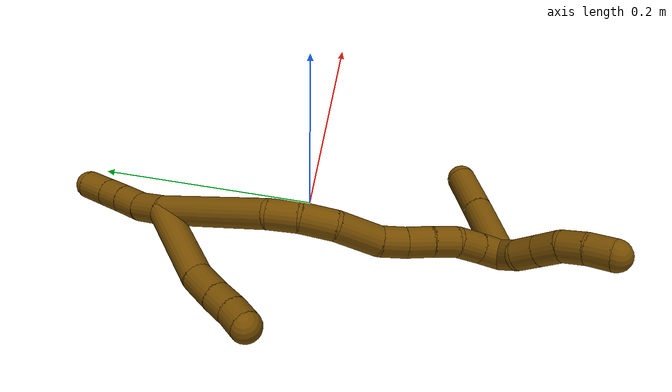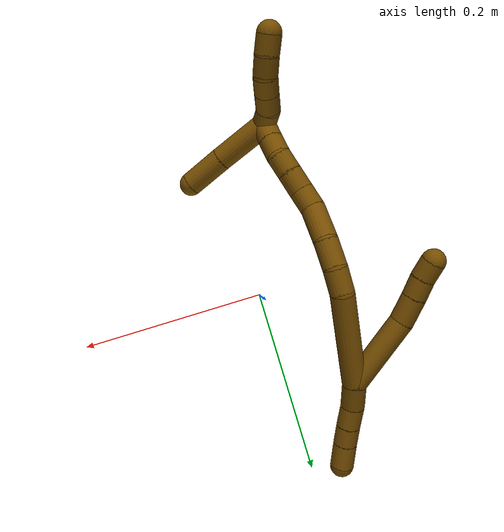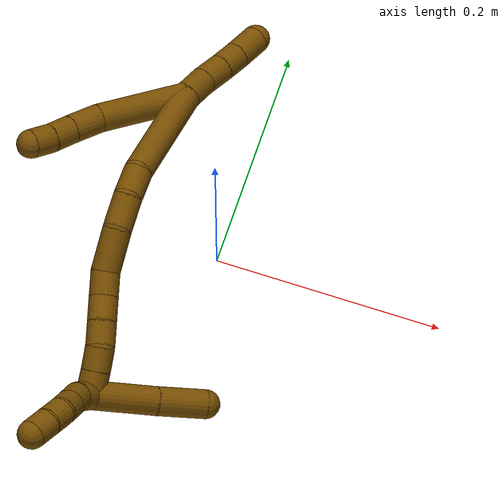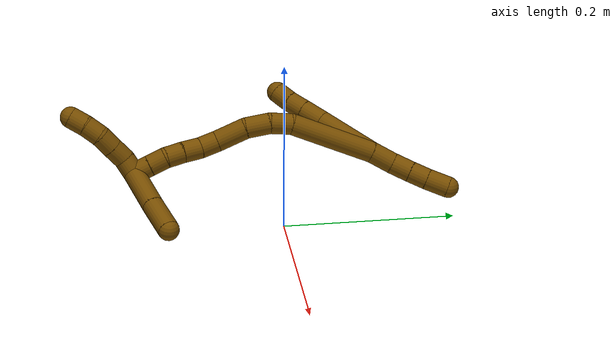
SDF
<sdf version="1.7">
 <world name="default">
  <model name="12">
   <static>0</static>
   <link name="12">
    <collision name="collision-cylinder-e_1_2_8">
     <pose>-0.03387 -0.021312 0.002916 1.4348 -1.00497 -0.894153</pose>
     <geometry><cylinder><radius>0.0125</radius><length>0.080246</length></cylinder></geometry>
     <surface>
      <friction><ode><mu>1.16</mu><mu2>1.16</mu2><slip1>0</slip1><slip2>0</slip2></ode></friction>
      <contact><ode><kp>1e+06</kp><kd>1</kd><max_vel>0</max_vel><min_depth>0.001</min_depth></ode></contact>
     </surface>
    </collision>
    <visual name="visual-cylinder-e_1_2_8">
     <pose>-0.03387 -0.021312 0.002916 1.4348 -1.00497 -0.894153</pose>
     <geometry><cylinder><radius>0.0125</radius><length>0.080246</length></cylinder></geometry>
     <material><ambient>0.466667 0.301961 0 1</ambient></material>
    </visual>
    <collision name="collision-cylinder-e_2_8_9">
     <pose>-0.077878 -0.052409 0.00881 1.27543 -0.781013 -0.59213</pose>
     <geometry><cylinder><radius>0.0125</radius><length>0.028803</length></cylinder></geometry>
     <surface>
      <friction><ode><mu>1.16</mu><mu2>1.16</mu2><slip1>0</slip1><slip2>0</slip2></ode></friction>
      <contact><ode><kp>1e+06</kp><kd>1</kd><max_vel>0</max_vel><min_depth>0.001</min_depth></ode></contact>
     </surface>
    </collision>
    <visual name="visual-cylinder-e_2_8_9">
     <pose>-0.077878 -0.052409 0.00881 1.27543 -0.781013 -0.59213</pose>
     <geometry><cylinder><radius>0.0125</radius><length>0.028803</length></cylinder></geometry>
     <material><ambient>0.466667 0.301961 0 1</ambient></material>
    </visual>
    <collision name="collision-cylinder-e_3_9_10">
     <pose>-0.095008 -0.069539 0.014136 1.26135 -0.736466 -0.549196</pose>
     <geometry><cylinder><radius>0.0125</radius><length>0.020817</length></cylinder></geometry>
     <surface>
      <friction><ode><mu>1.16</mu><mu2>1.16</mu2><slip1>0</slip1><slip2>0</slip2></ode></friction>
      <contact><ode><kp>1e+06</kp><kd>1</kd><max_vel>0</max_vel><min_depth>0.001</min_depth></ode></contact>
     </surface>
    </collision>
    <visual name="visual-cylinder-e_3_9_10">
     <pose>-0.095008 -0.069539 0.014136 1.26135 -0.736466 -0.549196</pose>
     <geometry><cylinder><radius>0.0125</radius><length>0.020817</length></cylinder></geometry>
     <material><ambient>0.466667 0.301961 0 1</ambient></material>
    </visual>
    <collision name="collision-cylinder-e_4_10_6">
     <pose>-0.109399 -0.083108 0.019284 1.14805 -0.825828 -0.552138</pose>
     <geometry><cylinder><radius>0.0125</radius><length>0.020134</length></cylinder></geometry>
     <surface>
      <friction><ode><mu>1.16</mu><mu2>1.16</mu2><slip1>0</slip1><slip2>0</slip2></ode></friction>
      <contact><ode><kp>1e+06</kp><kd>1</kd><max_vel>0</max_vel><min_depth>0.001</min_depth></ode></contact>
     </surface>
    </collision>
    <visual name="visual-cylinder-e_4_10_6">
     <pose>-0.109399 -0.083108 0.019284 1.14805 -0.825828 -0.552138</pose>
     <geometry><cylinder><radius>0.0125</radius><length>0.020134</length></cylinder></geometry>
     <material><ambient>0.466667 0.301961 0 1</ambient></material>
    </visual>
    <collision name="collision-cylinder-e_1_2_11">
     <pose>0.005293 0.011888 -0.005111 -1.97682 0.388284 -0.580246</pose>
     <geometry><cylinder><radius>0.0125</radius><length>0.027961</length></cylinder></geometry>
     <surface>
      <friction><ode><mu>1.16</mu><mu2>1.16</mu2><slip1>0</slip1><slip2>0</slip2></ode></friction>
      <contact><ode><kp>1e+06</kp><kd>1</kd><max_vel>0</max_vel><min_depth>0.001</min_depth></ode></contact>
     </surface>
    </collision>
    <visual name="visual-cylinder-e_1_2_11">
     <pose>0.005293 0.011888 -0.005111 -1.97682 0.388284 -0.580246</pose>
     <geometry><cylinder><radius>0.0125</radius><length>0.027961</length></cylinder></geometry>
     <material><ambient>0.466667 0.301961 0 1</ambient></material>
    </visual>
    <collision name="collision-cylinder-e_2_11_12">
     <pose>0.016659 0.033585 -0.013032 -1.84983 0.536844 -0.699832</pose>
     <geometry><cylinder><radius>0.0125</radius><length>0.023749</length></cylinder></geometry>
     <surface>
      <friction><ode><mu>1.16</mu><mu2>1.16</mu2><slip1>0</slip1><slip2>0</slip2></ode></friction>
      <contact><ode><kp>1e+06</kp><kd>1</kd><max_vel>0</max_vel><min_depth>0.001</min_depth></ode></contact>
     </surface>
    </collision>
    <visual name="visual-cylinder-e_2_11_12">
     <pose>0.016659 0.033585 -0.013032 -1.84983 0.536844 -0.699832</pose>
     <geometry><cylinder><radius>0.0125</radius><length>0.023749</length></cylinder></geometry>
     <material><ambient>0.466667 0.301961 0 1</ambient></material>
    </visual>
    <collision name="collision-cylinder-e_3_12_13">
     <pose>0.028019 0.052452 -0.018276 -1.83329 0.513319 -0.659555</pose>
     <geometry><cylinder><radius>0.0125</radius><length>0.021533</length></cylinder></geometry>
     <surface>
      <friction><ode><mu>1.16</mu><mu2>1.16</mu2><slip1>0</slip1><slip2>0</slip2></ode></friction>
      <contact><ode><kp>1e+06</kp><kd>1</kd><max_vel>0</max_vel><min_depth>0.001</min_depth></ode></contact>
     </surface>
    </collision>
    <visual name="visual-cylinder-e_3_12_13">
     <pose>0.028019 0.052452 -0.018276 -1.83329 0.513319 -0.659555</pose>
     <geometry><cylinder><radius>0.0125</radius><length>0.021533</length></cylinder></geometry>
     <material><ambient>0.466667 0.301961 0 1</ambient></material>
    </visual>
    <collision name="collision-cylinder-e_4_13_5">
     <pose>0.039685 0.073021 -0.023116 -1.77689 0.497042 -0.605416</pose>
     <geometry><cylinder><radius>0.0125</radius><length>0.026757</length></cylinder></geometry>
     <surface>
      <friction><ode><mu>1.16</mu><mu2>1.16</mu2><slip1>0</slip1><slip2>0</slip2></ode></friction>
      <contact><ode><kp>1e+06</kp><kd>1</kd><max_vel>0</max_vel><min_depth>0.001</min_depth></ode></contact>
     </surface>
    </collision>
    <visual name="visual-cylinder-e_4_13_5">
     <pose>0.039685 0.073021 -0.023116 -1.77689 0.497042 -0.605416</pose>
     <geometry><cylinder><radius>0.0125</radius><length>0.026757</length></cylinder></geometry>
     <material><ambient>0.466667 0.301961 0 1</ambient></material>
    </visual>
    <collision name="collision-cylinder-e_1_2_14">
     <pose>-0.011484 -0.047528 0.014616 1.27244 -0.226979 -0.167994</pose>
     <geometry><cylinder><radius>0.0125</radius><length>0.102067</length></cylinder></geometry>
     <surface>
      <friction><ode><mu>1.16</mu><mu2>1.16</mu2><slip1>0</slip1><slip2>0</slip2></ode></friction>
      <contact><ode><kp>1e+06</kp><kd>1</kd><max_vel>0</max_vel><min_depth>0.001</min_depth></ode></contact>
     </surface>
    </collision>
    <visual name="visual-cylinder-e_1_2_14">
     <pose>-0.011484 -0.047528 0.014616 1.27244 -0.226979 -0.167994</pose>
     <geometry><cylinder><radius>0.0125</radius><length>0.102067</length></cylinder></geometry>
     <material><ambient>0.466667 0.301961 0 1</ambient></material>
    </visual>
    <collision name="collision-cylinder-e_2_14_15">
     <pose>-0.024507 -0.10793 0.029499 1.55011 -0.118926 -0.116497</pose>
     <geometry><cylinder><radius>0.0125</radius><length>0.025938</length></cylinder></geometry>
     <surface>
      <friction><ode><mu>1.16</mu><mu2>1.16</mu2><slip1>0</slip1><slip2>0</slip2></ode></friction>
      <contact><ode><kp>1e+06</kp><kd>1</kd><max_vel>0</max_vel><min_depth>0.001</min_depth></ode></contact>
     </surface>
    </collision>
    <visual name="visual-cylinder-e_2_14_15">
     <pose>-0.024507 -0.10793 0.029499 1.55011 -0.118926 -0.116497</pose>
     <geometry><cylinder><radius>0.0125</radius><length>0.025938</length></cylinder></geometry>
     <material><ambient>0.466667 0.301961 0 1</ambient></material>
    </visual>
    <collision name="collision-cylinder-e_3_15_16">
     <pose>-0.027141 -0.134862 0.026473 1.80087 -0.075679 -0.095426</pose>
     <geometry><cylinder><radius>0.0125</radius><length>0.028961</length></cylinder></geometry>
     <surface>
      <friction><ode><mu>1.16</mu><mu2>1.16</mu2><slip1>0</slip1><slip2>0</slip2></ode></friction>
      <contact><ode><kp>1e+06</kp><kd>1</kd><max_vel>0</max_vel><min_depth>0.001</min_depth></ode></contact>
     </surface>
    </collision>
    <visual name="visual-cylinder-e_3_15_16">
     <pose>-0.027141 -0.134862 0.026473 1.80087 -0.075679 -0.095426</pose>
     <geometry><cylinder><radius>0.0125</radius><length>0.028961</length></cylinder></geometry>
     <material><ambient>0.466667 0.301961 0 1</ambient></material>
    </visual>
    <collision name="collision-cylinder-e_4_16_17">
     <pose>-0.028971 -0.165557 0.014594 2.04723 -0.039268 -0.064441</pose>
     <geometry><cylinder><radius>0.0125</radius><length>0.037472</length></cylinder></geometry>
     <surface>
      <friction><ode><mu>1.16</mu><mu2>1.16</mu2><slip1>0</slip1><slip2>0</slip2></ode></friction>
      <contact><ode><kp>1e+06</kp><kd>1</kd><max_vel>0</max_vel><min_depth>0.001</min_depth></ode></contact>
     </surface>
    </collision>
    <visual name="visual-cylinder-e_4_16_17">
     <pose>-0.028971 -0.165557 0.014594 2.04723 -0.039268 -0.064441</pose>
     <geometry><cylinder><radius>0.0125</radius><length>0.037472</length></cylinder></geometry>
     <material><ambient>0.466667 0.301961 0 1</ambient></material>
    </visual>
    <collision name="collision-cylinder-e_5_17_18">
     <pose>-0.027929 -0.192506 0.002966 1.85762 0.16386 0.218786</pose>
     <geometry><cylinder><radius>0.0125</radius><length>0.021794</length></cylinder></geometry>
     <surface>
      <friction><ode><mu>1.16</mu><mu2>1.16</mu2><slip1>0</slip1><slip2>0</slip2></ode></friction>
      <contact><ode><kp>1e+06</kp><kd>1</kd><max_vel>0</max_vel><min_depth>0.001</min_depth></ode></contact>
     </surface>
    </collision>
    <visual name="visual-cylinder-e_5_17_18">
     <pose>-0.027929 -0.192506 0.002966 1.85762 0.16386 0.218786</pose>
     <geometry><cylinder><radius>0.0125</radius><length>0.021794</length></cylinder></geometry>
     <material><ambient>0.466667 0.301961 0 1</ambient></material>
    </visual>
    <collision name="collision-cylinder-e_6_18_19">
     <pose>-0.024339 -0.213468 -0.001509 1.70463 0.167109 0.19098</pose>
     <geometry><cylinder><radius>0.0125</radius><length>0.021797</length></cylinder></geometry>
     <surface>
      <friction><ode><mu>1.16</mu><mu2>1.16</mu2><slip1>0</slip1><slip2>0</slip2></ode></friction>
      <contact><ode><kp>1e+06</kp><kd>1</kd><max_vel>0</max_vel><min_depth>0.001</min_depth></ode></contact>
     </surface>
    </collision>
    <visual name="visual-cylinder-e_6_18_19">
     <pose>-0.024339 -0.213468 -0.001509 1.70463 0.167109 0.19098</pose>
     <geometry><cylinder><radius>0.0125</radius><length>0.021797</length></cylinder></geometry>
     <material><ambient>0.466667 0.301961 0 1</ambient></material>
    </visual>
    <collision name="collision-cylinder-e_7_19_20">
     <pose>-0.02079 -0.234252 -0.005077 1.77835 0.166118 0.2045</pose>
     <geometry><cylinder><radius>0.0125</radius><length>0.021</length></cylinder></geometry>
     <surface>
      <friction><ode><mu>1.16</mu><mu2>1.16</mu2><slip1>0</slip1><slip2>0</slip2></ode></friction>
      <contact><ode><kp>1e+06</kp><kd>1</kd><max_vel>0</max_vel><min_depth>0.001</min_depth></ode></contact>
     </surface>
    </collision>
    <visual name="visual-cylinder-e_7_19_20">
     <pose>-0.02079 -0.234252 -0.005077 1.77835 0.166118 0.2045</pose>
     <geometry><cylinder><radius>0.0125</radius><length>0.021</length></cylinder></geometry>
     <material><ambient>0.466667 0.301961 0 1</ambient></material>
    </visual>
    <collision name="collision-cylinder-e_8_20_21">
     <pose>-0.018565 -0.253484 -0.011792 2.03717 0.047869 0.077666</pose>
     <geometry><cylinder><radius>0.0125</radius><length>0.020397</length></cylinder></geometry>
     <surface>
      <friction><ode><mu>1.16</mu><mu2>1.16</mu2><slip1>0</slip1><slip2>0</slip2></ode></friction>
      <contact><ode><kp>1e+06</kp><kd>1</kd><max_vel>0</max_vel><min_depth>0.001</min_depth></ode></contact>
     </surface>
    </collision>
    <visual name="visual-cylinder-e_8_20_21">
     <pose>-0.018565 -0.253484 -0.011792 2.03717 0.047869 0.077666</pose>
     <geometry><cylinder><radius>0.0125</radius><length>0.020397</length></cylinder></geometry>
     <material><ambient>0.466667 0.301961 0 1</ambient></material>
    </visual>
    <collision name="collision-cylinder-e_9_21_1">
     <pose>-0.017963 -0.27178 -0.020981 2.0354 0.011152 0.018064</pose>
     <geometry><cylinder><radius>0.0125</radius><length>0.020575</length></cylinder></geometry>
     <surface>
      <friction><ode><mu>1.16</mu><mu2>1.16</mu2><slip1>0</slip1><slip2>0</slip2></ode></friction>
      <contact><ode><kp>1e+06</kp><kd>1</kd><max_vel>0</max_vel><min_depth>0.001</min_depth></ode></contact>
     </surface>
    </collision>
    <visual name="visual-cylinder-e_9_21_1">
     <pose>-0.017963 -0.27178 -0.020981 2.0354 0.011152 0.018064</pose>
     <geometry><cylinder><radius>0.0125</radius><length>0.020575</length></cylinder></geometry>
     <material><ambient>0.466667 0.301961 0 1</ambient></material>
    </visual>
    <collision name="collision-cylinder-e_1_1_22">
     <pose>-0.022602 -0.286113 -0.018448 0.623492 -0.495442 -0.162646</pose>
     <geometry><cylinder><radius>0.0125</radius><length>0.02</length></cylinder></geometry>
     <surface>
      <friction><ode><mu>1.16</mu><mu2>1.16</mu2><slip1>0</slip1><slip2>0</slip2></ode></friction>
      <contact><ode><kp>1e+06</kp><kd>1</kd><max_vel>0</max_vel><min_depth>0.001</min_depth></ode></contact>
     </surface>
    </collision>
    <visual name="visual-cylinder-e_1_1_22">
     <pose>-0.022602 -0.286113 -0.018448 0.623492 -0.495442 -0.162646</pose>
     <geometry><cylinder><radius>0.0125</radius><length>0.02</length></cylinder></geometry>
     <material><ambient>0.466667 0.301961 0 1</ambient></material>
    </visual>
    <collision name="collision-cylinder-e_2_22_23">
     <pose>-0.029533 -0.298341 -0.004599 0.813235 -0.21938 -0.094778</pose>
     <geometry><cylinder><radius>0.0125</radius><length>0.02</length></cylinder></geometry>
     <surface>
      <friction><ode><mu>1.16</mu><mu2>1.16</mu2><slip1>0</slip1><slip2>0</slip2></ode></friction>
      <contact><ode><kp>1e+06</kp><kd>1</kd><max_vel>0</max_vel><min_depth>0.001</min_depth></ode></contact>
     </surface>
    </collision>
    <visual name="visual-cylinder-e_2_22_23">
     <pose>-0.029533 -0.298341 -0.004599 0.813235 -0.21938 -0.094778</pose>
     <geometry><cylinder><radius>0.0125</radius><length>0.02</length></cylinder></geometry>
     <material><ambient>0.466667 0.301961 0 1</ambient></material>
    </visual>
    <collision name="collision-cylinder-e_3_23_24">
     <pose>-0.03398 -0.312377 0.008934 0.79408 -0.22914 -0.096428</pose>
     <geometry><cylinder><radius>0.0125</radius><length>0.02</length></cylinder></geometry>
     <surface>
      <friction><ode><mu>1.16</mu><mu2>1.16</mu2><slip1>0</slip1><slip2>0</slip2></ode></friction>
      <contact><ode><kp>1e+06</kp><kd>1</kd><max_vel>0</max_vel><min_depth>0.001</min_depth></ode></contact>
     </surface>
    </collision>
    <visual name="visual-cylinder-e_3_23_24">
     <pose>-0.03398 -0.312377 0.008934 0.79408 -0.22914 -0.096428</pose>
     <geometry><cylinder><radius>0.0125</radius><length>0.02</length></cylinder></geometry>
     <material><ambient>0.466667 0.301961 0 1</ambient></material>
    </visual>
    <collision name="collision-cylinder-e_4_24_25">
     <pose>-0.040352 -0.327176 0.020399 1.03728 -0.422459 -0.243561</pose>
     <geometry><cylinder><radius>0.0125</radius><length>0.02</length></cylinder></geometry>
     <surface>
      <friction><ode><mu>1.16</mu><mu2>1.16</mu2><slip1>0</slip1><slip2>0</slip2></ode></friction>
      <contact><ode><kp>1e+06</kp><kd>1</kd><max_vel>0</max_vel><min_depth>0.001</min_depth></ode></contact>
     </surface>
    </collision>
    <visual name="visual-cylinder-e_4_24_25">
     <pose>-0.040352 -0.327176 0.020399 1.03728 -0.422459 -0.243561</pose>
     <geometry><cylinder><radius>0.0125</radius><length>0.02</length></cylinder></geometry>
     <material><ambient>0.466667 0.301961 0 1</ambient></material>
    </visual>
    <collision name="collision-cylinder-e_5_25_4">
     <pose>-0.049217 -0.343186 0.028319 1.1883 -0.496656 -0.33931</pose>
     <geometry><cylinder><radius>0.0125</radius><length>0.02</length></cylinder></geometry>
     <surface>
      <friction><ode><mu>1.16</mu><mu2>1.16</mu2><slip1>0</slip1><slip2>0</slip2></ode></friction>
      <contact><ode><kp>1e+06</kp><kd>1</kd><max_vel>0</max_vel><min_depth>0.001</min_depth></ode></contact>
     </surface>
    </collision>
    <visual name="visual-cylinder-e_5_25_4">
     <pose>-0.049217 -0.343186 0.028319 1.1883 -0.496656 -0.33931</pose>
     <geometry><cylinder><radius>0.0125</radius><length>0.02</length></cylinder></geometry>
     <material><ambient>0.466667 0.301961 0 1</ambient></material>
    </visual>
    <collision name="collision-cylinder-e_1_1_26">
     <pose>0.009485 -0.274291 -0.031222 -2.27086 1.26129 -2.00712</pose>
     <geometry><cylinder><radius>0.0125</radius><length>0.057394</length></cylinder></geometry>
     <surface>
      <friction><ode><mu>1.16</mu><mu2>1.16</mu2><slip1>0</slip1><slip2>0</slip2></ode></friction>
      <contact><ode><kp>1e+06</kp><kd>1</kd><max_vel>0</max_vel><min_depth>0.001</min_depth></ode></contact>
     </surface>
    </collision>
    <visual name="visual-cylinder-e_1_1_26">
     <pose>0.009485 -0.274291 -0.031222 -2.27086 1.26129 -2.00712</pose>
     <geometry><cylinder><radius>0.0125</radius><length>0.057394</length></cylinder></geometry>
     <material><ambient>0.466667 0.301961 0 1</ambient></material>
    </visual>
    <collision name="collision-cylinder-e_2_26_3">
     <pose>0.057038 -0.262154 -0.04076 -2.19246 1.25047 -1.90453</pose>
     <geometry><cylinder><radius>0.0125</radius><length>0.042606</length></cylinder></geometry>
     <surface>
      <friction><ode><mu>1.16</mu><mu2>1.16</mu2><slip1>0</slip1><slip2>0</slip2></ode></friction>
      <contact><ode><kp>1e+06</kp><kd>1</kd><max_vel>0</max_vel><min_depth>0.001</min_depth></ode></contact>
     </surface>
    </collision>
    <visual name="visual-cylinder-e_2_26_3">
     <pose>0.057038 -0.262154 -0.04076 -2.19246 1.25047 -1.90453</pose>
     <geometry><cylinder><radius>0.0125</radius><length>0.042606</length></cylinder></geometry>
     <material><ambient>0.466667 0.301961 0 1</ambient></material>
    </visual>
    <collision name="collision-sphere-3">
     <pose>0.077258 -0.256701 -0.044666 0 -0 0</pose>
     <geometry><sphere><radius>0.0125</radius></sphere></geometry>
     <surface>
      <friction><ode><mu>1.16</mu><mu2>1.16</mu2><slip1>0</slip1><slip2>0</slip2></ode></friction>
      <contact><ode><kp>1e+06</kp><kd>1</kd><max_vel>0</max_vel><min_depth>0.001</min_depth></ode></contact>
     </surface>
    </collision>
    <visual name="visual-sphere-3">
     <pose>0.077258 -0.256701 -0.044666 0 -0 0</pose>
     <geometry><sphere><radius>0.0125</radius></sphere></geometry>
     <material><ambient>0.466667 0.301961 0 1</ambient></material>
    </visual>
    <collision name="collision-sphere-26">
     <pose>0.036819 -0.267607 -0.036853 0 -0 0</pose>
     <geometry><sphere><radius>0.0125</radius></sphere></geometry>
     <surface>
      <friction><ode><mu>1.16</mu><mu2>1.16</mu2><slip1>0</slip1><slip2>0</slip2></ode></friction>
      <contact><ode><kp>1e+06</kp><kd>1</kd><max_vel>0</max_vel><min_depth>0.001</min_depth></ode></contact>
     </surface>
    </collision>
    <visual name="visual-sphere-26">
     <pose>0.036819 -0.267607 -0.036853 0 -0 0</pose>
     <geometry><sphere><radius>0.0125</radius></sphere></geometry>
     <material><ambient>0.466667 0.301961 0 1</ambient></material>
    </visual>
    <collision name="collision-sphere-4">
     <pose>-0.053982 -0.351343 0.0316 0 -0 0</pose>
     <geometry><sphere><radius>0.0125</radius></sphere></geometry>
     <surface>
      <friction><ode><mu>1.16</mu><mu2>1.16</mu2><slip1>0</slip1><slip2>0</slip2></ode></friction>
      <contact><ode><kp>1e+06</kp><kd>1</kd><max_vel>0</max_vel><min_depth>0.001</min_depth></ode></contact>
     </surface>
    </collision>
    <visual name="visual-sphere-4">
     <pose>-0.053982 -0.351343 0.0316 0 -0 0</pose>
     <geometry><sphere><radius>0.0125</radius></sphere></geometry>
     <material><ambient>0.466667 0.301961 0 1</ambient></material>
    </visual>
    <collision name="collision-sphere-25">
     <pose>-0.044452 -0.33503 0.025037 0 -0 0</pose>
     <geometry><sphere><radius>0.0125</radius></sphere></geometry>
     <surface>
      <friction><ode><mu>1.16</mu><mu2>1.16</mu2><slip1>0</slip1><slip2>0</slip2></ode></friction>
      <contact><ode><kp>1e+06</kp><kd>1</kd><max_vel>0</max_vel><min_depth>0.001</min_depth></ode></contact>
     </surface>
    </collision>
    <visual name="visual-sphere-25">
     <pose>-0.044452 -0.33503 0.025037 0 -0 0</pose>
     <geometry><sphere><radius>0.0125</radius></sphere></geometry>
     <material><ambient>0.466667 0.301961 0 1</ambient></material>
    </visual>
    <collision name="collision-sphere-24">
     <pose>-0.036252 -0.319323 0.01576 0 -0 0</pose>
     <geometry><sphere><radius>0.0125</radius></sphere></geometry>
     <surface>
      <friction><ode><mu>1.16</mu><mu2>1.16</mu2><slip1>0</slip1><slip2>0</slip2></ode></friction>
      <contact><ode><kp>1e+06</kp><kd>1</kd><max_vel>0</max_vel><min_depth>0.001</min_depth></ode></contact>
     </surface>
    </collision>
    <visual name="visual-sphere-24">
     <pose>-0.036252 -0.319323 0.01576 0 -0 0</pose>
     <geometry><sphere><radius>0.0125</radius></sphere></geometry>
     <material><ambient>0.466667 0.301961 0 1</ambient></material>
    </visual>
    <collision name="collision-sphere-23">
     <pose>-0.031709 -0.305432 0.002108 0 -0 0</pose>
     <geometry><sphere><radius>0.0125</radius></sphere></geometry>
     <surface>
      <friction><ode><mu>1.16</mu><mu2>1.16</mu2><slip1>0</slip1><slip2>0</slip2></ode></friction>
      <contact><ode><kp>1e+06</kp><kd>1</kd><max_vel>0</max_vel><min_depth>0.001</min_depth></ode></contact>
     </surface>
    </collision>
    <visual name="visual-sphere-23">
     <pose>-0.031709 -0.305432 0.002108 0 -0 0</pose>
     <geometry><sphere><radius>0.0125</radius></sphere></geometry>
     <material><ambient>0.466667 0.301961 0 1</ambient></material>
    </visual>
    <collision name="collision-sphere-22">
     <pose>-0.027356 -0.29125 -0.011306 0 -0 0</pose>
     <geometry><sphere><radius>0.0125</radius></sphere></geometry>
     <surface>
      <friction><ode><mu>1.16</mu><mu2>1.16</mu2><slip1>0</slip1><slip2>0</slip2></ode></friction>
      <contact><ode><kp>1e+06</kp><kd>1</kd><max_vel>0</max_vel><min_depth>0.001</min_depth></ode></contact>
     </surface>
    </collision>
    <visual name="visual-sphere-22">
     <pose>-0.027356 -0.29125 -0.011306 0 -0 0</pose>
     <geometry><sphere><radius>0.0125</radius></sphere></geometry>
     <material><ambient>0.466667 0.301961 0 1</ambient></material>
    </visual>
    <collision name="collision-sphere-1">
     <pose>-0.017848 -0.280976 -0.025591 0 -0 0</pose>
     <geometry><sphere><radius>0.0125</radius></sphere></geometry>
     <surface>
      <friction><ode><mu>1.16</mu><mu2>1.16</mu2><slip1>0</slip1><slip2>0</slip2></ode></friction>
      <contact><ode><kp>1e+06</kp><kd>1</kd><max_vel>0</max_vel><min_depth>0.001</min_depth></ode></contact>
     </surface>
    </collision>
    <visual name="visual-sphere-1">
     <pose>-0.017848 -0.280976 -0.025591 0 -0 0</pose>
     <geometry><sphere><radius>0.0125</radius></sphere></geometry>
     <material><ambient>0.466667 0.301961 0 1</ambient></material>
    </visual>
    <collision name="collision-sphere-21">
     <pose>-0.018077 -0.262583 -0.016372 0 -0 0</pose>
     <geometry><sphere><radius>0.0125</radius></sphere></geometry>
     <surface>
      <friction><ode><mu>1.16</mu><mu2>1.16</mu2><slip1>0</slip1><slip2>0</slip2></ode></friction>
      <contact><ode><kp>1e+06</kp><kd>1</kd><max_vel>0</max_vel><min_depth>0.001</min_depth></ode></contact>
     </surface>
    </collision>
    <visual name="visual-sphere-21">
     <pose>-0.018077 -0.262583 -0.016372 0 -0 0</pose>
     <geometry><sphere><radius>0.0125</radius></sphere></geometry>
     <material><ambient>0.466667 0.301961 0 1</ambient></material>
    </visual>
    <collision name="collision-sphere-11">
     <pose>0.010586 0.023776 -0.010222 0 -0 0</pose>
     <geometry><sphere><radius>0.0125</radius></sphere></geometry>
     <surface>
      <friction><ode><mu>1.16</mu><mu2>1.16</mu2><slip1>0</slip1><slip2>0</slip2></ode></friction>
      <contact><ode><kp>1e+06</kp><kd>1</kd><max_vel>0</max_vel><min_depth>0.001</min_depth></ode></contact>
     </surface>
    </collision>
    <visual name="visual-sphere-11">
     <pose>0.010586 0.023776 -0.010222 0 -0 0</pose>
     <geometry><sphere><radius>0.0125</radius></sphere></geometry>
     <material><ambient>0.466667 0.301961 0 1</ambient></material>
    </visual>
    <collision name="collision-sphere-6">
     <pose>-0.1168 -0.089332 0.022084 0 -0 0</pose>
     <geometry><sphere><radius>0.0125</radius></sphere></geometry>
     <surface>
      <friction><ode><mu>1.16</mu><mu2>1.16</mu2><slip1>0</slip1><slip2>0</slip2></ode></friction>
      <contact><ode><kp>1e+06</kp><kd>1</kd><max_vel>0</max_vel><min_depth>0.001</min_depth></ode></contact>
     </surface>
    </collision>
    <visual name="visual-sphere-6">
     <pose>-0.1168 -0.089332 0.022084 0 -0 0</pose>
     <geometry><sphere><radius>0.0125</radius></sphere></geometry>
     <material><ambient>0.466667 0.301961 0 1</ambient></material>
    </visual>
    <collision name="collision-sphere-10">
     <pose>-0.101999 -0.076883 0.016484 0 -0 0</pose>
     <geometry><sphere><radius>0.0125</radius></sphere></geometry>
     <surface>
      <friction><ode><mu>1.16</mu><mu2>1.16</mu2><slip1>0</slip1><slip2>0</slip2></ode></friction>
      <contact><ode><kp>1e+06</kp><kd>1</kd><max_vel>0</max_vel><min_depth>0.001</min_depth></ode></contact>
     </surface>
    </collision>
    <visual name="visual-sphere-10">
     <pose>-0.101999 -0.076883 0.016484 0 -0 0</pose>
     <geometry><sphere><radius>0.0125</radius></sphere></geometry>
     <material><ambient>0.466667 0.301961 0 1</ambient></material>
    </visual>
    <collision name="collision-sphere-9">
     <pose>-0.088016 -0.062194 0.011787 0 -0 0</pose>
     <geometry><sphere><radius>0.0125</radius></sphere></geometry>
     <surface>
      <friction><ode><mu>1.16</mu><mu2>1.16</mu2><slip1>0</slip1><slip2>0</slip2></ode></friction>
      <contact><ode><kp>1e+06</kp><kd>1</kd><max_vel>0</max_vel><min_depth>0.001</min_depth></ode></contact>
     </surface>
    </collision>
    <visual name="visual-sphere-9">
     <pose>-0.088016 -0.062194 0.011787 0 -0 0</pose>
     <geometry><sphere><radius>0.0125</radius></sphere></geometry>
     <material><ambient>0.466667 0.301961 0 1</ambient></material>
    </visual>
    <collision name="collision-sphere-2">
     <geometry><sphere><radius>0.0125</radius></sphere></geometry>
     <surface>
      <friction><ode><mu>1.16</mu><mu2>1.16</mu2><slip1>0</slip1><slip2>0</slip2></ode></friction>
      <contact><ode><kp>1e+06</kp><kd>1</kd><max_vel>0</max_vel><min_depth>0.001</min_depth></ode></contact>
     </surface>
    </collision>
    <visual name="visual-sphere-2">
     <geometry><sphere><radius>0.0125</radius></sphere></geometry>
     <material><ambient>0.466667 0.301961 0 1</ambient></material>
    </visual>
    <collision name="collision-sphere-19">
     <pose>-0.022526 -0.224119 -0.002943 0 -0 0</pose>
     <geometry><sphere><radius>0.0125</radius></sphere></geometry>
     <surface>
      <friction><ode><mu>1.16</mu><mu2>1.16</mu2><slip1>0</slip1><slip2>0</slip2></ode></friction>
      <contact><ode><kp>1e+06</kp><kd>1</kd><max_vel>0</max_vel><min_depth>0.001</min_depth></ode></contact>
     </surface>
    </collision>
    <visual name="visual-sphere-19">
     <pose>-0.022526 -0.224119 -0.002943 0 -0 0</pose>
     <geometry><sphere><radius>0.0125</radius></sphere></geometry>
     <material><ambient>0.466667 0.301961 0 1</ambient></material>
    </visual>
    <collision name="collision-sphere-8">
     <pose>-0.067739 -0.042624 0.005833 0 -0 0</pose>
     <geometry><sphere><radius>0.0125</radius></sphere></geometry>
     <surface>
      <friction><ode><mu>1.16</mu><mu2>1.16</mu2><slip1>0</slip1><slip2>0</slip2></ode></friction>
      <contact><ode><kp>1e+06</kp><kd>1</kd><max_vel>0</max_vel><min_depth>0.001</min_depth></ode></contact>
     </surface>
    </collision>
    <visual name="visual-sphere-8">
     <pose>-0.067739 -0.042624 0.005833 0 -0 0</pose>
     <geometry><sphere><radius>0.0125</radius></sphere></geometry>
     <material><ambient>0.466667 0.301961 0 1</ambient></material>
    </visual>
    <collision name="collision-sphere-12">
     <pose>0.022732 0.043395 -0.015842 0 -0 0</pose>
     <geometry><sphere><radius>0.0125</radius></sphere></geometry>
     <surface>
      <friction><ode><mu>1.16</mu><mu2>1.16</mu2><slip1>0</slip1><slip2>0</slip2></ode></friction>
      <contact><ode><kp>1e+06</kp><kd>1</kd><max_vel>0</max_vel><min_depth>0.001</min_depth></ode></contact>
     </surface>
    </collision>
    <visual name="visual-sphere-12">
     <pose>0.022732 0.043395 -0.015842 0 -0 0</pose>
     <geometry><sphere><radius>0.0125</radius></sphere></geometry>
     <material><ambient>0.466667 0.301961 0 1</ambient></material>
    </visual>
    <collision name="collision-sphere-13">
     <pose>0.033306 0.06151 -0.02071 0 -0 0</pose>
     <geometry><sphere><radius>0.0125</radius></sphere></geometry>
     <surface>
      <friction><ode><mu>1.16</mu><mu2>1.16</mu2><slip1>0</slip1><slip2>0</slip2></ode></friction>
      <contact><ode><kp>1e+06</kp><kd>1</kd><max_vel>0</max_vel><min_depth>0.001</min_depth></ode></contact>
     </surface>
    </collision>
    <visual name="visual-sphere-13">
     <pose>0.033306 0.06151 -0.02071 0 -0 0</pose>
     <geometry><sphere><radius>0.0125</radius></sphere></geometry>
     <material><ambient>0.466667 0.301961 0 1</ambient></material>
    </visual>
    <collision name="collision-sphere-5">
     <pose>0.046065 0.084531 -0.025523 0 -0 0</pose>
     <geometry><sphere><radius>0.0125</radius></sphere></geometry>
     <surface>
      <friction><ode><mu>1.16</mu><mu2>1.16</mu2><slip1>0</slip1><slip2>0</slip2></ode></friction>
      <contact><ode><kp>1e+06</kp><kd>1</kd><max_vel>0</max_vel><min_depth>0.001</min_depth></ode></contact>
     </surface>
    </collision>
    <visual name="visual-sphere-5">
     <pose>0.046065 0.084531 -0.025523 0 -0 0</pose>
     <geometry><sphere><radius>0.0125</radius></sphere></geometry>
     <material><ambient>0.466667 0.301961 0 1</ambient></material>
    </visual>
    <collision name="collision-sphere-14">
     <pose>-0.022969 -0.095055 0.029233 0 -0 0</pose>
     <geometry><sphere><radius>0.0125</radius></sphere></geometry>
     <surface>
      <friction><ode><mu>1.16</mu><mu2>1.16</mu2><slip1>0</slip1><slip2>0</slip2></ode></friction>
      <contact><ode><kp>1e+06</kp><kd>1</kd><max_vel>0</max_vel><min_depth>0.001</min_depth></ode></contact>
     </surface>
    </collision>
    <visual name="visual-sphere-14">
     <pose>-0.022969 -0.095055 0.029233 0 -0 0</pose>
     <geometry><sphere><radius>0.0125</radius></sphere></geometry>
     <material><ambient>0.466667 0.301961 0 1</ambient></material>
    </visual>
    <collision name="collision-sphere-15">
     <pose>-0.026046 -0.120804 0.029765 0 -0 0</pose>
     <geometry><sphere><radius>0.0125</radius></sphere></geometry>
     <surface>
      <friction><ode><mu>1.16</mu><mu2>1.16</mu2><slip1>0</slip1><slip2>0</slip2></ode></friction>
      <contact><ode><kp>1e+06</kp><kd>1</kd><max_vel>0</max_vel><min_depth>0.001</min_depth></ode></contact>
     </surface>
    </collision>
    <visual name="visual-sphere-15">
     <pose>-0.026046 -0.120804 0.029765 0 -0 0</pose>
     <geometry><sphere><radius>0.0125</radius></sphere></geometry>
     <material><ambient>0.466667 0.301961 0 1</ambient></material>
    </visual>
    <collision name="collision-sphere-16">
     <pose>-0.028236 -0.148921 0.02318 0 -0 0</pose>
     <geometry><sphere><radius>0.0125</radius></sphere></geometry>
     <surface>
      <friction><ode><mu>1.16</mu><mu2>1.16</mu2><slip1>0</slip1><slip2>0</slip2></ode></friction>
      <contact><ode><kp>1e+06</kp><kd>1</kd><max_vel>0</max_vel><min_depth>0.001</min_depth></ode></contact>
     </surface>
    </collision>
    <visual name="visual-sphere-16">
     <pose>-0.028236 -0.148921 0.02318 0 -0 0</pose>
     <geometry><sphere><radius>0.0125</radius></sphere></geometry>
     <material><ambient>0.466667 0.301961 0 1</ambient></material>
    </visual>
    <collision name="collision-sphere-17">
     <pose>-0.029707 -0.182194 0.006008 0 -0 0</pose>
     <geometry><sphere><radius>0.0125</radius></sphere></geometry>
     <surface>
      <friction><ode><mu>1.16</mu><mu2>1.16</mu2><slip1>0</slip1><slip2>0</slip2></ode></friction>
      <contact><ode><kp>1e+06</kp><kd>1</kd><max_vel>0</max_vel><min_depth>0.001</min_depth></ode></contact>
     </surface>
    </collision>
    <visual name="visual-sphere-17">
     <pose>-0.029707 -0.182194 0.006008 0 -0 0</pose>
     <geometry><sphere><radius>0.0125</radius></sphere></geometry>
     <material><ambient>0.466667 0.301961 0 1</ambient></material>
    </visual>
    <collision name="collision-sphere-18">
     <pose>-0.026151 -0.202818 -7.5e-05 0 -0 0</pose>
     <geometry><sphere><radius>0.0125</radius></sphere></geometry>
     <surface>
      <friction><ode><mu>1.16</mu><mu2>1.16</mu2><slip1>0</slip1><slip2>0</slip2></ode></friction>
      <contact><ode><kp>1e+06</kp><kd>1</kd><max_vel>0</max_vel><min_depth>0.001</min_depth></ode></contact>
     </surface>
    </collision>
    <visual name="visual-sphere-18">
     <pose>-0.026151 -0.202818 -7.5e-05 0 -0 0</pose>
     <geometry><sphere><radius>0.0125</radius></sphere></geometry>
     <material><ambient>0.466667 0.301961 0 1</ambient></material>
    </visual>
    <collision name="collision-sphere-20">
     <pose>-0.019053 -0.244385 -0.007211 0 -0 0</pose>
     <geometry><sphere><radius>0.0125</radius></sphere></geometry>
     <surface>
      <friction><ode><mu>1.16</mu><mu2>1.16</mu2><slip1>0</slip1><slip2>0</slip2></ode></friction>
      <contact><ode><kp>1e+06</kp><kd>1</kd><max_vel>0</max_vel><min_depth>0.001</min_depth></ode></contact>
     </surface>
    </collision>
    <visual name="visual-sphere-20">
     <pose>-0.019053 -0.244385 -0.007211 0 -0 0</pose>
     <geometry><sphere><radius>0.0125</radius></sphere></geometry>
     <material><ambient>0.466667 0.301961 0 1</ambient></material>
    </visual>
    <inertial>
     <pose>-0.017967 -0.136897 -0.00041 0 -0 0</pose>
     <mass>0.75</mass>
     <inertia><ixx>8.5e-05</ixx><ixy>0</ixy><ixz>0</ixz><iyy>1.6e-05</iyy><iyz>0</iyz><izz>0.000162</izz></inertia>
    </inertial>
   </link>
   <pose>-0.065552 0.114143 0.057081 -0.070959 0.082943 0.103166</pose>
  </model>
 </world>
</sdf>
